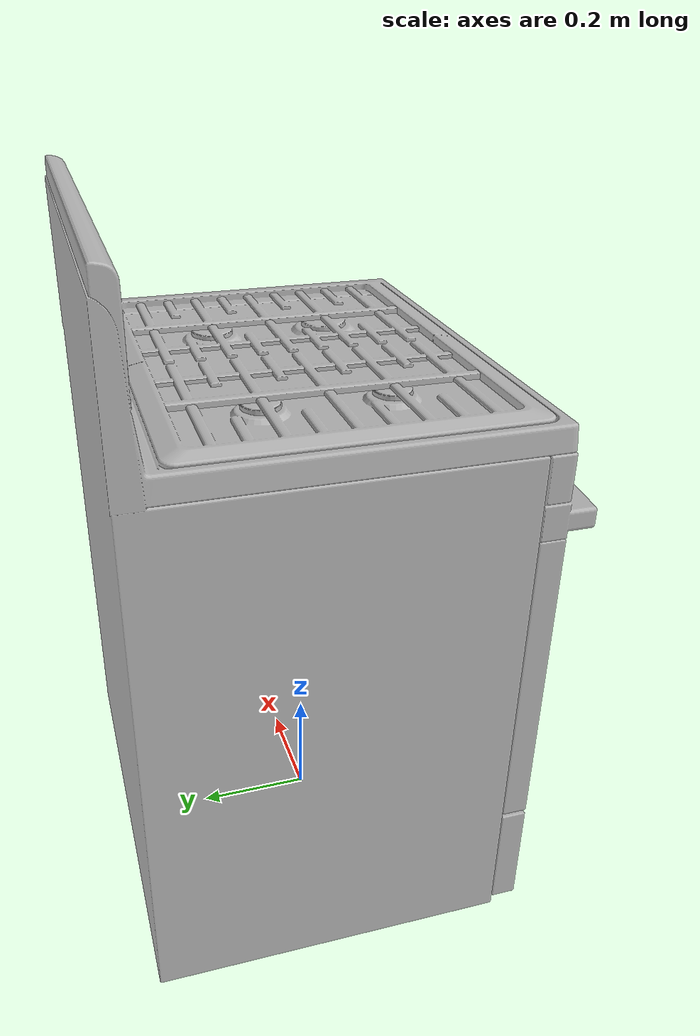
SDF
<?xml version="1.0"?>
<sdf version="1.5">
    <model name="Stove">
        <static>true</static>

        <link name="Stove">
            <pose>0 0 0 0 0 0</pose>
            <static>true</static>
            <visual name="visual">
                <geometry>
                        <mesh>
                        <uri>model://stove/stove.stl</uri>
                        <scale>1 1 1</scale>
                        </mesh>
                </geometry>
            </visual>
        </link>
    </model>
 </sdf>
